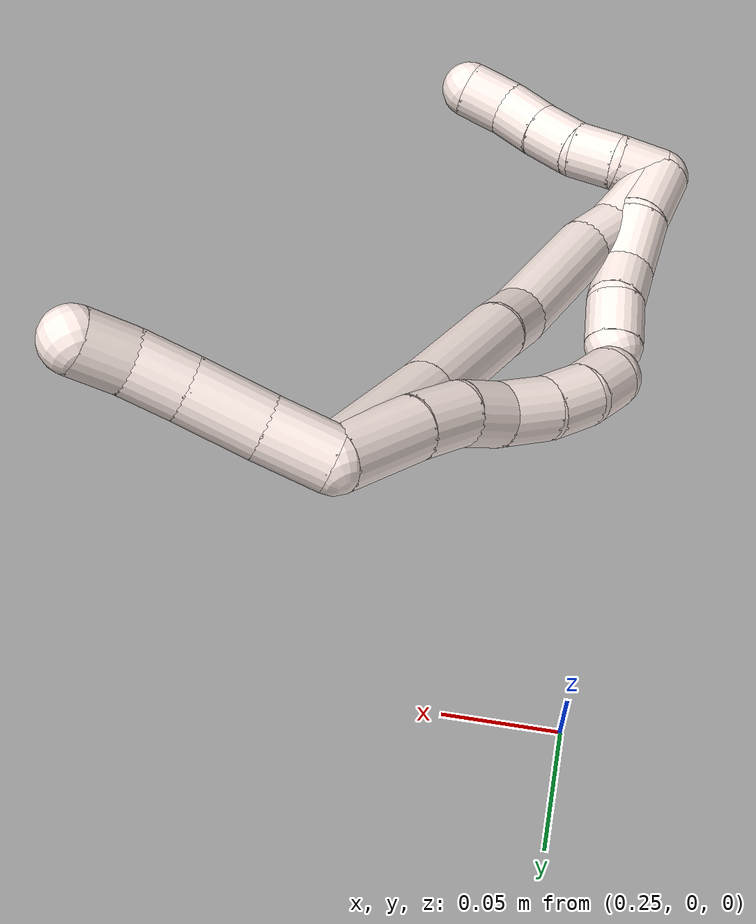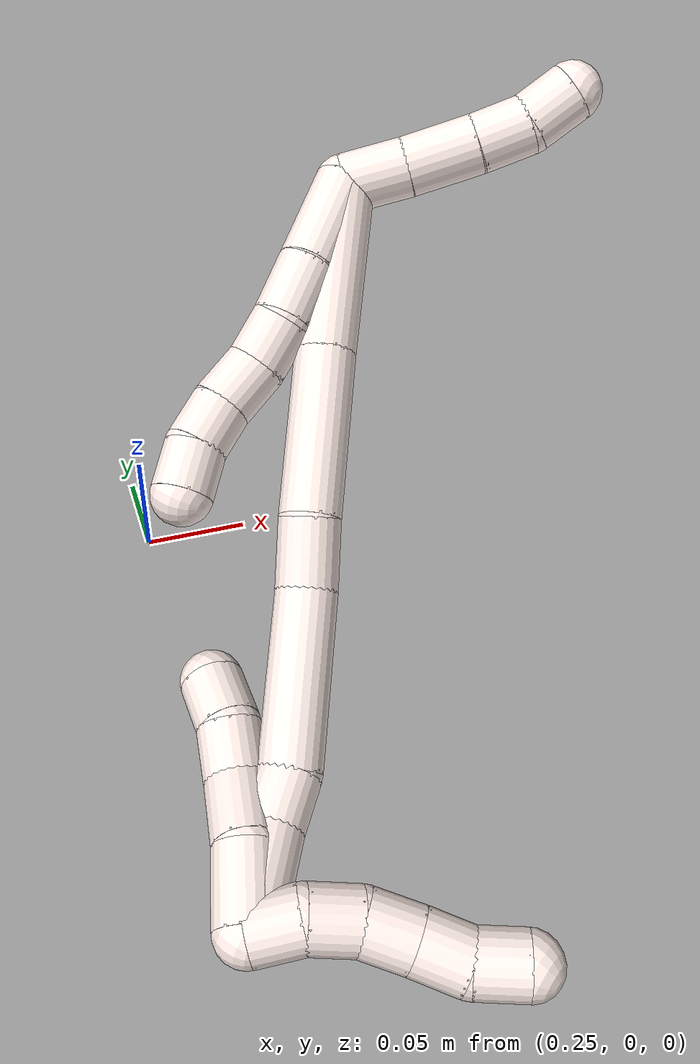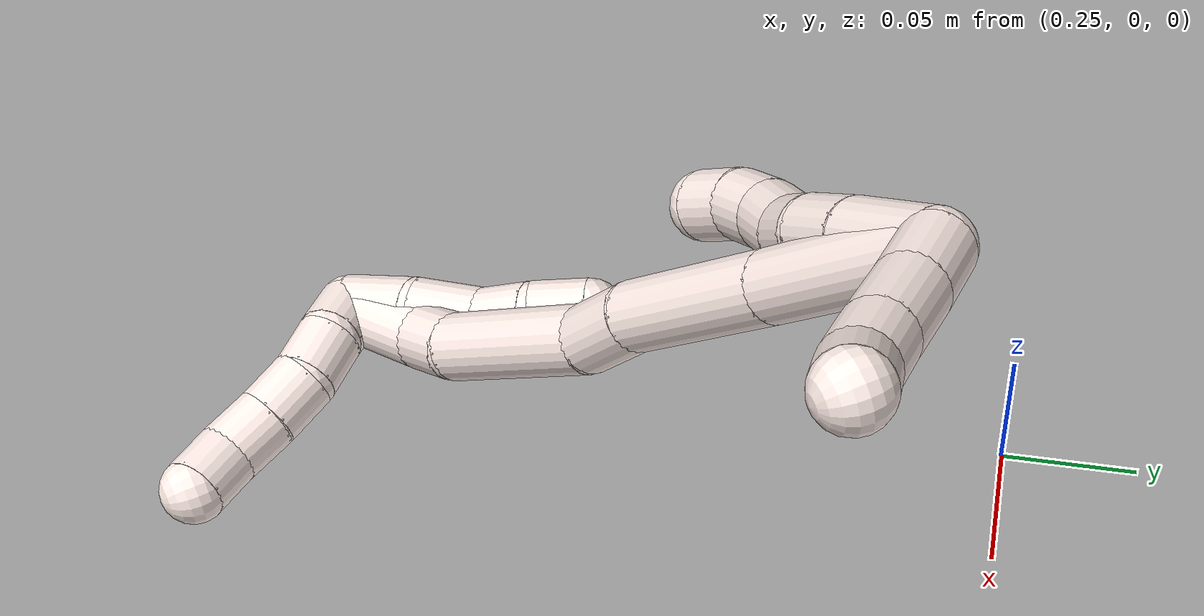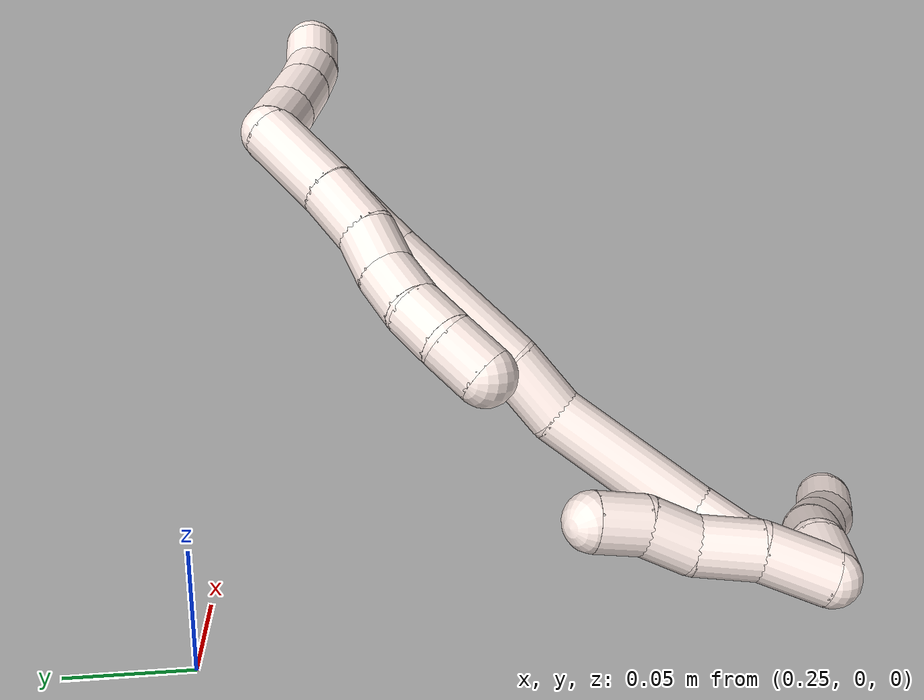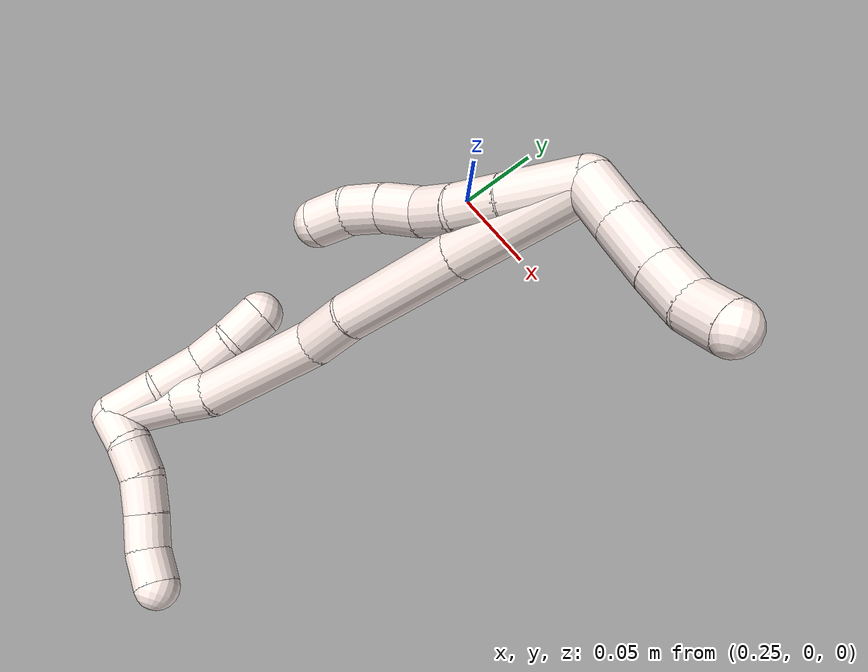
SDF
<sdf version="1.7">
 <world name="default">
  <model name="11">
   <static>0</static>
   <link name="11">
    <collision name="collision-cylinder-e_1_2_8">
     <pose>0.019733 -0.001086 0.0042 0.252936 1.35441 0.203757</pose>
     <geometry><cylinder><radius>0.0125</radius><length>0.040409</length></cylinder></geometry>
     <surface>
      <friction><ode><mu>1.16</mu><mu2>1.16</mu2><slip1>0</slip1><slip2>0</slip2></ode></friction>
      <contact><ode><kp>1e+06</kp><kd>1</kd><max_vel>0</max_vel><min_depth>0.001</min_depth></ode></contact>
     </surface>
    </collision>
    <visual name="visual-cylinder-e_1_2_8">
     <pose>0.019733 -0.001086 0.0042 0.252936 1.35441 0.203757</pose>
     <geometry><cylinder><radius>0.0125</radius><length>0.040409</length></cylinder></geometry>
     <material><ambient>1 0.933333 0.909804 1</ambient></material>
    </visual>
    <collision name="collision-cylinder-e_2_8_9">
     <pose>0.052352 -0.00209 0.010574 -0.037045 1.4035 -0.031314</pose>
     <geometry><cylinder><radius>0.0125</radius><length>0.026136</length></cylinder></geometry>
     <surface>
      <friction><ode><mu>1.16</mu><mu2>1.16</mu2><slip1>0</slip1><slip2>0</slip2></ode></friction>
      <contact><ode><kp>1e+06</kp><kd>1</kd><max_vel>0</max_vel><min_depth>0.001</min_depth></ode></contact>
     </surface>
    </collision>
    <visual name="visual-cylinder-e_2_8_9">
     <pose>0.052352 -0.00209 0.010574 -0.037045 1.4035 -0.031314</pose>
     <geometry><cylinder><radius>0.0125</radius><length>0.026136</length></cylinder></geometry>
     <material><ambient>1 0.933333 0.909804 1</ambient></material>
    </visual>
    <collision name="collision-cylinder-e_3_9_10">
     <pose>0.075672 -0.000653 0.01251 -1.74522 1.43952 -1.61444</pose>
     <geometry><cylinder><radius>0.0125</radius><length>0.021051</length></cylinder></geometry>
     <surface>
      <friction><ode><mu>1.16</mu><mu2>1.16</mu2><slip1>0</slip1><slip2>0</slip2></ode></friction>
      <contact><ode><kp>1e+06</kp><kd>1</kd><max_vel>0</max_vel><min_depth>0.001</min_depth></ode></contact>
     </surface>
    </collision>
    <visual name="visual-cylinder-e_3_9_10">
     <pose>0.075672 -0.000653 0.01251 -1.74522 1.43952 -1.61444</pose>
     <geometry><cylinder><radius>0.0125</radius><length>0.021051</length></cylinder></geometry>
     <material><ambient>1 0.933333 0.909804 1</ambient></material>
    </visual>
    <collision name="collision-cylinder-e_4_10_11">
     <pose>0.097127 -0.000778 0.011621 1.98382 1.42499 1.84621</pose>
     <geometry><cylinder><radius>0.0125</radius><length>0.022277</length></cylinder></geometry>
     <surface>
      <friction><ode><mu>1.16</mu><mu2>1.16</mu2><slip1>0</slip1><slip2>0</slip2></ode></friction>
      <contact><ode><kp>1e+06</kp><kd>1</kd><max_vel>0</max_vel><min_depth>0.001</min_depth></ode></contact>
     </surface>
    </collision>
    <visual name="visual-cylinder-e_4_10_11">
     <pose>0.097127 -0.000778 0.011621 1.98382 1.42499 1.84621</pose>
     <geometry><cylinder><radius>0.0125</radius><length>0.022277</length></cylinder></geometry>
     <material><ambient>1 0.933333 0.909804 1</ambient></material>
    </visual>
    <collision name="collision-cylinder-e_5_11_12">
     <pose>0.117993 -0.00372 0.012228 0.85987 1.37756 0.721946</pose>
     <geometry><cylinder><radius>0.0125</radius><length>0.020063</length></cylinder></geometry>
     <surface>
      <friction><ode><mu>1.16</mu><mu2>1.16</mu2><slip1>0</slip1><slip2>0</slip2></ode></friction>
      <contact><ode><kp>1e+06</kp><kd>1</kd><max_vel>0</max_vel><min_depth>0.001</min_depth></ode></contact>
     </surface>
    </collision>
    <visual name="visual-cylinder-e_5_11_12">
     <pose>0.117993 -0.00372 0.012228 0.85987 1.37756 0.721946</pose>
     <geometry><cylinder><radius>0.0125</radius><length>0.020063</length></cylinder></geometry>
     <material><ambient>1 0.933333 0.909804 1</ambient></material>
    </visual>
    <collision name="collision-cylinder-e_6_12_6">
     <pose>0.137294 -0.005128 0.016834 -0.015666 1.23044 -0.011071</pose>
     <geometry><cylinder><radius>0.0125</radius><length>0.020064</length></cylinder></geometry>
     <surface>
      <friction><ode><mu>1.16</mu><mu2>1.16</mu2><slip1>0</slip1><slip2>0</slip2></ode></friction>
      <contact><ode><kp>1e+06</kp><kd>1</kd><max_vel>0</max_vel><min_depth>0.001</min_depth></ode></contact>
     </surface>
    </collision>
    <visual name="visual-cylinder-e_6_12_6">
     <pose>0.137294 -0.005128 0.016834 -0.015666 1.23044 -0.011071</pose>
     <geometry><cylinder><radius>0.0125</radius><length>0.020064</length></cylinder></geometry>
     <material><ambient>1 0.933333 0.909804 1</ambient></material>
    </visual>
    <collision name="collision-cylinder-e_1_2_13">
     <pose>-0.009427 0.002 0.009279 -0.212282 -0.78201 0.087783</pose>
     <geometry><cylinder><radius>0.0125</radius><length>0.026756</length></cylinder></geometry>
     <surface>
      <friction><ode><mu>1.16</mu><mu2>1.16</mu2><slip1>0</slip1><slip2>0</slip2></ode></friction>
      <contact><ode><kp>1e+06</kp><kd>1</kd><max_vel>0</max_vel><min_depth>0.001</min_depth></ode></contact>
     </surface>
    </collision>
    <visual name="visual-cylinder-e_1_2_13">
     <pose>-0.009427 0.002 0.009279 -0.212282 -0.78201 0.087783</pose>
     <geometry><cylinder><radius>0.0125</radius><length>0.026756</length></cylinder></geometry>
     <material><ambient>1 0.933333 0.909804 1</ambient></material>
    </visual>
    <collision name="collision-cylinder-e_2_13_14">
     <pose>-0.029725 0.005432 0.02886 -0.138168 -0.807402 0.059097</pose>
     <geometry><cylinder><radius>0.0125</radius><length>0.03009</length></cylinder></geometry>
     <surface>
      <friction><ode><mu>1.16</mu><mu2>1.16</mu2><slip1>0</slip1><slip2>0</slip2></ode></friction>
      <contact><ode><kp>1e+06</kp><kd>1</kd><max_vel>0</max_vel><min_depth>0.001</min_depth></ode></contact>
     </surface>
    </collision>
    <visual name="visual-cylinder-e_2_13_14">
     <pose>-0.029725 0.005432 0.02886 -0.138168 -0.807402 0.059097</pose>
     <geometry><cylinder><radius>0.0125</radius><length>0.03009</length></cylinder></geometry>
     <material><ambient>1 0.933333 0.909804 1</ambient></material>
    </visual>
    <collision name="collision-cylinder-e_3_14_15">
     <pose>-0.04897 0.007691 0.046299 -0.11522 -0.861774 0.053012</pose>
     <geometry><cylinder><radius>0.0125</radius><length>0.02207</length></cylinder></geometry>
     <surface>
      <friction><ode><mu>1.16</mu><mu2>1.16</mu2><slip1>0</slip1><slip2>0</slip2></ode></friction>
      <contact><ode><kp>1e+06</kp><kd>1</kd><max_vel>0</max_vel><min_depth>0.001</min_depth></ode></contact>
     </surface>
    </collision>
    <visual name="visual-cylinder-e_3_14_15">
     <pose>-0.04897 0.007691 0.046299 -0.11522 -0.861774 0.053012</pose>
     <geometry><cylinder><radius>0.0125</radius><length>0.02207</length></cylinder></geometry>
     <material><ambient>1 0.933333 0.909804 1</ambient></material>
    </visual>
    <collision name="collision-cylinder-e_4_15_5">
     <pose>-0.066768 0.007922 0.058128 0.126192 -1.1056 -0.07792</pose>
     <geometry><cylinder><radius>0.0125</radius><length>0.021084</length></cylinder></geometry>
     <surface>
      <friction><ode><mu>1.16</mu><mu2>1.16</mu2><slip1>0</slip1><slip2>0</slip2></ode></friction>
      <contact><ode><kp>1e+06</kp><kd>1</kd><max_vel>0</max_vel><min_depth>0.001</min_depth></ode></contact>
     </surface>
    </collision>
    <visual name="visual-cylinder-e_4_15_5">
     <pose>-0.066768 0.007922 0.058128 0.126192 -1.1056 -0.07792</pose>
     <geometry><cylinder><radius>0.0125</radius><length>0.021084</length></cylinder></geometry>
     <material><ambient>1 0.933333 0.909804 1</ambient></material>
    </visual>
    <collision name="collision-cylinder-e_1_2_16">
     <pose>0.033305 0.004973 0.015371 -0.312882 1.11916 -0.196954</pose>
     <geometry><cylinder><radius>0.0125</radius><length>0.074032</length></cylinder></geometry>
     <surface>
      <friction><ode><mu>1.16</mu><mu2>1.16</mu2><slip1>0</slip1><slip2>0</slip2></ode></friction>
      <contact><ode><kp>1e+06</kp><kd>1</kd><max_vel>0</max_vel><min_depth>0.001</min_depth></ode></contact>
     </surface>
    </collision>
    <visual name="visual-cylinder-e_1_2_16">
     <pose>0.033305 0.004973 0.015371 -0.312882 1.11916 -0.196954</pose>
     <geometry><cylinder><radius>0.0125</radius><length>0.074032</length></cylinder></geometry>
     <material><ambient>1 0.933333 0.909804 1</ambient></material>
    </visual>
    <collision name="collision-cylinder-e_2_16_17">
     <pose>0.096957 0.013918 0.045862 -0.256944 1.09511 -0.157214</pose>
     <geometry><cylinder><radius>0.0125</radius><length>0.068276</length></cylinder></geometry>
     <surface>
      <friction><ode><mu>1.16</mu><mu2>1.16</mu2><slip1>0</slip1><slip2>0</slip2></ode></friction>
      <contact><ode><kp>1e+06</kp><kd>1</kd><max_vel>0</max_vel><min_depth>0.001</min_depth></ode></contact>
     </surface>
    </collision>
    <visual name="visual-cylinder-e_2_16_17">
     <pose>0.096957 0.013918 0.045862 -0.256944 1.09511 -0.157214</pose>
     <geometry><cylinder><radius>0.0125</radius><length>0.068276</length></cylinder></geometry>
     <material><ambient>1 0.933333 0.909804 1</ambient></material>
    </visual>
    <collision name="collision-cylinder-e_3_17_18">
     <pose>0.139755 0.021705 0.067032 -0.562494 1.04933 -0.331355</pose>
     <geometry><cylinder><radius>0.0125</radius><length>0.028715</length></cylinder></geometry>
     <surface>
      <friction><ode><mu>1.16</mu><mu2>1.16</mu2><slip1>0</slip1><slip2>0</slip2></ode></friction>
      <contact><ode><kp>1e+06</kp><kd>1</kd><max_vel>0</max_vel><min_depth>0.001</min_depth></ode></contact>
     </surface>
    </collision>
    <visual name="visual-cylinder-e_3_17_18">
     <pose>0.139755 0.021705 0.067032 -0.562494 1.04933 -0.331355</pose>
     <geometry><cylinder><radius>0.0125</radius><length>0.028715</length></cylinder></geometry>
     <material><ambient>1 0.933333 0.909804 1</ambient></material>
    </visual>
    <collision name="collision-cylinder-e_4_18_19">
     <pose>0.182596 0.025478 0.090034 0.002465 1.06203 0.001448</pose>
     <geometry><cylinder><radius>0.0125</radius><length>0.0696</length></cylinder></geometry>
     <surface>
      <friction><ode><mu>1.16</mu><mu2>1.16</mu2><slip1>0</slip1><slip2>0</slip2></ode></friction>
      <contact><ode><kp>1e+06</kp><kd>1</kd><max_vel>0</max_vel><min_depth>0.001</min_depth></ode></contact>
     </surface>
    </collision>
    <visual name="visual-cylinder-e_4_18_19">
     <pose>0.182596 0.025478 0.090034 0.002465 1.06203 0.001448</pose>
     <geometry><cylinder><radius>0.0125</radius><length>0.0696</length></cylinder></geometry>
     <material><ambient>1 0.933333 0.909804 1</ambient></material>
    </visual>
    <collision name="collision-cylinder-e_5_19_20">
     <pose>0.222841 0.023596 0.110375 0.497194 1.19762 0.343042</pose>
     <geometry><cylinder><radius>0.0125</radius><length>0.021162</length></cylinder></geometry>
     <surface>
      <friction><ode><mu>1.16</mu><mu2>1.16</mu2><slip1>0</slip1><slip2>0</slip2></ode></friction>
      <contact><ode><kp>1e+06</kp><kd>1</kd><max_vel>0</max_vel><min_depth>0.001</min_depth></ode></contact>
     </surface>
    </collision>
    <visual name="visual-cylinder-e_5_19_20">
     <pose>0.222841 0.023596 0.110375 0.497194 1.19762 0.343042</pose>
     <geometry><cylinder><radius>0.0125</radius><length>0.021162</length></cylinder></geometry>
     <material><ambient>1 0.933333 0.909804 1</ambient></material>
    </visual>
    <collision name="collision-cylinder-e_6_20_1">
     <pose>0.248259 0.014979 0.122534 0.65801 0.952077 0.348486</pose>
     <geometry><cylinder><radius>0.0125</radius><length>0.038215</length></cylinder></geometry>
     <surface>
      <friction><ode><mu>1.16</mu><mu2>1.16</mu2><slip1>0</slip1><slip2>0</slip2></ode></friction>
      <contact><ode><kp>1e+06</kp><kd>1</kd><max_vel>0</max_vel><min_depth>0.001</min_depth></ode></contact>
     </surface>
    </collision>
    <visual name="visual-cylinder-e_6_20_1">
     <pose>0.248259 0.014979 0.122534 0.65801 0.952077 0.348486</pose>
     <geometry><cylinder><radius>0.0125</radius><length>0.038215</length></cylinder></geometry>
     <material><ambient>1 0.933333 0.909804 1</ambient></material>
    </visual>
    <collision name="collision-cylinder-e_1_1_21">
     <pose>0.25278 0.010802 0.121625 -2.87904 -0.833973 2.56222</pose>
     <geometry><cylinder><radius>0.0125</radius><length>0.029827</length></cylinder></geometry>
     <surface>
      <friction><ode><mu>1.16</mu><mu2>1.16</mu2><slip1>0</slip1><slip2>0</slip2></ode></friction>
      <contact><ode><kp>1e+06</kp><kd>1</kd><max_vel>0</max_vel><min_depth>0.001</min_depth></ode></contact>
     </surface>
    </collision>
    <visual name="visual-cylinder-e_1_1_21">
     <pose>0.25278 0.010802 0.121625 -2.87904 -0.833973 2.56222</pose>
     <geometry><cylinder><radius>0.0125</radius><length>0.029827</length></cylinder></geometry>
     <material><ambient>1 0.933333 0.909804 1</ambient></material>
    </visual>
    <collision name="collision-cylinder-e_2_21_22">
     <pose>0.234107 0.018238 0.101864 -2.69446 -0.598609 1.87155</pose>
     <geometry><cylinder><radius>0.0125</radius><length>0.027072</length></cylinder></geometry>
     <surface>
      <friction><ode><mu>1.16</mu><mu2>1.16</mu2><slip1>0</slip1><slip2>0</slip2></ode></friction>
      <contact><ode><kp>1e+06</kp><kd>1</kd><max_vel>0</max_vel><min_depth>0.001</min_depth></ode></contact>
     </surface>
    </collision>
    <visual name="visual-cylinder-e_2_21_22">
     <pose>0.234107 0.018238 0.101864 -2.69446 -0.598609 1.87155</pose>
     <geometry><cylinder><radius>0.0125</radius><length>0.027072</length></cylinder></geometry>
     <material><ambient>1 0.933333 0.909804 1</ambient></material>
    </visual>
    <collision name="collision-cylinder-e_3_22_23">
     <pose>0.218946 0.02358 0.08396 -3.07687 -0.76562 2.98115</pose>
     <geometry><cylinder><radius>0.0125</radius><length>0.021741</length></cylinder></geometry>
     <surface>
      <friction><ode><mu>1.16</mu><mu2>1.16</mu2><slip1>0</slip1><slip2>0</slip2></ode></friction>
      <contact><ode><kp>1e+06</kp><kd>1</kd><max_vel>0</max_vel><min_depth>0.001</min_depth></ode></contact>
     </surface>
    </collision>
    <visual name="visual-cylinder-e_3_22_23">
     <pose>0.218946 0.02358 0.08396 -3.07687 -0.76562 2.98115</pose>
     <geometry><cylinder><radius>0.0125</radius><length>0.021741</length></cylinder></geometry>
     <material><ambient>1 0.933333 0.909804 1</ambient></material>
    </visual>
    <collision name="collision-cylinder-e_4_23_4">
     <pose>0.206451 0.02629 0.066943 -2.90654 -0.483282 2.24806</pose>
     <geometry><cylinder><radius>0.0125</radius><length>0.02136</length></cylinder></geometry>
     <surface>
      <friction><ode><mu>1.16</mu><mu2>1.16</mu2><slip1>0</slip1><slip2>0</slip2></ode></friction>
      <contact><ode><kp>1e+06</kp><kd>1</kd><max_vel>0</max_vel><min_depth>0.001</min_depth></ode></contact>
     </surface>
    </collision>
    <visual name="visual-cylinder-e_4_23_4">
     <pose>0.206451 0.02629 0.066943 -2.90654 -0.483282 2.24806</pose>
     <geometry><cylinder><radius>0.0125</radius><length>0.02136</length></cylinder></geometry>
     <material><ambient>1 0.933333 0.909804 1</ambient></material>
    </visual>
    <collision name="collision-cylinder-e_1_1_24">
     <pose>0.256756 0.010809 0.137878 -0.377489 -0.785077 0.157844</pose>
     <geometry><cylinder><radius>0.0125</radius><length>0.02</length></cylinder></geometry>
     <surface>
      <friction><ode><mu>1.16</mu><mu2>1.16</mu2><slip1>0</slip1><slip2>0</slip2></ode></friction>
      <contact><ode><kp>1e+06</kp><kd>1</kd><max_vel>0</max_vel><min_depth>0.001</min_depth></ode></contact>
     </surface>
    </collision>
    <visual name="visual-cylinder-e_1_1_24">
     <pose>0.256756 0.010809 0.137878 -0.377489 -0.785077 0.157844</pose>
     <geometry><cylinder><radius>0.0125</radius><length>0.02</length></cylinder></geometry>
     <material><ambient>1 0.933333 0.909804 1</ambient></material>
    </visual>
    <collision name="collision-cylinder-e_2_24_25">
     <pose>0.245011 0.01798 0.152023 -0.54256 -0.486551 0.137843</pose>
     <geometry><cylinder><radius>0.0125</radius><length>0.02</length></cylinder></geometry>
     <surface>
      <friction><ode><mu>1.16</mu><mu2>1.16</mu2><slip1>0</slip1><slip2>0</slip2></ode></friction>
      <contact><ode><kp>1e+06</kp><kd>1</kd><max_vel>0</max_vel><min_depth>0.001</min_depth></ode></contact>
     </surface>
    </collision>
    <visual name="visual-cylinder-e_2_24_25">
     <pose>0.245011 0.01798 0.152023 -0.54256 -0.486551 0.137843</pose>
     <geometry><cylinder><radius>0.0125</radius><length>0.02</length></cylinder></geometry>
     <material><ambient>1 0.933333 0.909804 1</ambient></material>
    </visual>
    <collision name="collision-cylinder-e_3_25_26">
     <pose>0.238086 0.026424 0.168531 -0.409572 -0.226903 0.047322</pose>
     <geometry><cylinder><radius>0.0125</radius><length>0.02</length></cylinder></geometry>
     <surface>
      <friction><ode><mu>1.16</mu><mu2>1.16</mu2><slip1>0</slip1><slip2>0</slip2></ode></friction>
      <contact><ode><kp>1e+06</kp><kd>1</kd><max_vel>0</max_vel><min_depth>0.001</min_depth></ode></contact>
     </surface>
    </collision>
    <visual name="visual-cylinder-e_3_25_26">
     <pose>0.238086 0.026424 0.168531 -0.409572 -0.226903 0.047322</pose>
     <geometry><cylinder><radius>0.0125</radius><length>0.02</length></cylinder></geometry>
     <material><ambient>1 0.933333 0.909804 1</ambient></material>
    </visual>
    <collision name="collision-cylinder-e_4_26_27">
     <pose>0.233892 0.033645 0.186691 -0.347566 -0.195724 0.034467</pose>
     <geometry><cylinder><radius>0.0125</radius><length>0.02</length></cylinder></geometry>
     <surface>
      <friction><ode><mu>1.16</mu><mu2>1.16</mu2><slip1>0</slip1><slip2>0</slip2></ode></friction>
      <contact><ode><kp>1e+06</kp><kd>1</kd><max_vel>0</max_vel><min_depth>0.001</min_depth></ode></contact>
     </surface>
    </collision>
    <visual name="visual-cylinder-e_4_26_27">
     <pose>0.233892 0.033645 0.186691 -0.347566 -0.195724 0.034467</pose>
     <geometry><cylinder><radius>0.0125</radius><length>0.02</length></cylinder></geometry>
     <material><ambient>1 0.933333 0.909804 1</ambient></material>
    </visual>
    <collision name="collision-cylinder-e_5_27_3">
     <pose>0.226888 0.039701 0.204101 -0.32019 -0.53044 0.087664</pose>
     <geometry><cylinder><radius>0.0125</radius><length>0.02</length></cylinder></geometry>
     <surface>
      <friction><ode><mu>1.16</mu><mu2>1.16</mu2><slip1>0</slip1><slip2>0</slip2></ode></friction>
      <contact><ode><kp>1e+06</kp><kd>1</kd><max_vel>0</max_vel><min_depth>0.001</min_depth></ode></contact>
     </surface>
    </collision>
    <visual name="visual-cylinder-e_5_27_3">
     <pose>0.226888 0.039701 0.204101 -0.32019 -0.53044 0.087664</pose>
     <geometry><cylinder><radius>0.0125</radius><length>0.02</length></cylinder></geometry>
     <material><ambient>1 0.933333 0.909804 1</ambient></material>
    </visual>
    <collision name="collision-sphere-3">
     <pose>0.221829 0.042416 0.212289 0 -0 0</pose>
     <geometry><sphere><radius>0.0125</radius></sphere></geometry>
     <surface>
      <friction><ode><mu>1.16</mu><mu2>1.16</mu2><slip1>0</slip1><slip2>0</slip2></ode></friction>
      <contact><ode><kp>1e+06</kp><kd>1</kd><max_vel>0</max_vel><min_depth>0.001</min_depth></ode></contact>
     </surface>
    </collision>
    <visual name="visual-sphere-3">
     <pose>0.221829 0.042416 0.212289 0 -0 0</pose>
     <geometry><sphere><radius>0.0125</radius></sphere></geometry>
     <material><ambient>1 0.933333 0.909804 1</ambient></material>
    </visual>
    <collision name="collision-sphere-27">
     <pose>0.231947 0.036986 0.195914 0 -0 0</pose>
     <geometry><sphere><radius>0.0125</radius></sphere></geometry>
     <surface>
      <friction><ode><mu>1.16</mu><mu2>1.16</mu2><slip1>0</slip1><slip2>0</slip2></ode></friction>
      <contact><ode><kp>1e+06</kp><kd>1</kd><max_vel>0</max_vel><min_depth>0.001</min_depth></ode></contact>
     </surface>
    </collision>
    <visual name="visual-sphere-27">
     <pose>0.231947 0.036986 0.195914 0 -0 0</pose>
     <geometry><sphere><radius>0.0125</radius></sphere></geometry>
     <material><ambient>1 0.933333 0.909804 1</ambient></material>
    </visual>
    <collision name="collision-sphere-26">
     <pose>0.235836 0.030304 0.177469 0 -0 0</pose>
     <geometry><sphere><radius>0.0125</radius></sphere></geometry>
     <surface>
      <friction><ode><mu>1.16</mu><mu2>1.16</mu2><slip1>0</slip1><slip2>0</slip2></ode></friction>
      <contact><ode><kp>1e+06</kp><kd>1</kd><max_vel>0</max_vel><min_depth>0.001</min_depth></ode></contact>
     </surface>
    </collision>
    <visual name="visual-sphere-26">
     <pose>0.235836 0.030304 0.177469 0 -0 0</pose>
     <geometry><sphere><radius>0.0125</radius></sphere></geometry>
     <material><ambient>1 0.933333 0.909804 1</ambient></material>
    </visual>
    <collision name="collision-sphere-25">
     <pose>0.240336 0.022544 0.159593 0 -0 0</pose>
     <geometry><sphere><radius>0.0125</radius></sphere></geometry>
     <surface>
      <friction><ode><mu>1.16</mu><mu2>1.16</mu2><slip1>0</slip1><slip2>0</slip2></ode></friction>
      <contact><ode><kp>1e+06</kp><kd>1</kd><max_vel>0</max_vel><min_depth>0.001</min_depth></ode></contact>
     </surface>
    </collision>
    <visual name="visual-sphere-25">
     <pose>0.240336 0.022544 0.159593 0 -0 0</pose>
     <geometry><sphere><radius>0.0125</radius></sphere></geometry>
     <material><ambient>1 0.933333 0.909804 1</ambient></material>
    </visual>
    <collision name="collision-sphere-24">
     <pose>0.249687 0.013416 0.144453 0 -0 0</pose>
     <geometry><sphere><radius>0.0125</radius></sphere></geometry>
     <surface>
      <friction><ode><mu>1.16</mu><mu2>1.16</mu2><slip1>0</slip1><slip2>0</slip2></ode></friction>
      <contact><ode><kp>1e+06</kp><kd>1</kd><max_vel>0</max_vel><min_depth>0.001</min_depth></ode></contact>
     </surface>
    </collision>
    <visual name="visual-sphere-24">
     <pose>0.249687 0.013416 0.144453 0 -0 0</pose>
     <geometry><sphere><radius>0.0125</radius></sphere></geometry>
     <material><ambient>1 0.933333 0.909804 1</ambient></material>
    </visual>
    <collision name="collision-sphere-4">
     <pose>0.201488 0.028492 0.057746 0 -0 0</pose>
     <geometry><sphere><radius>0.0125</radius></sphere></geometry>
     <surface>
      <friction><ode><mu>1.16</mu><mu2>1.16</mu2><slip1>0</slip1><slip2>0</slip2></ode></friction>
      <contact><ode><kp>1e+06</kp><kd>1</kd><max_vel>0</max_vel><min_depth>0.001</min_depth></ode></contact>
     </surface>
    </collision>
    <visual name="visual-sphere-4">
     <pose>0.201488 0.028492 0.057746 0 -0 0</pose>
     <geometry><sphere><radius>0.0125</radius></sphere></geometry>
     <material><ambient>1 0.933333 0.909804 1</ambient></material>
    </visual>
    <collision name="collision-sphere-23">
     <pose>0.211413 0.024087 0.07614 0 -0 0</pose>
     <geometry><sphere><radius>0.0125</radius></sphere></geometry>
     <surface>
      <friction><ode><mu>1.16</mu><mu2>1.16</mu2><slip1>0</slip1><slip2>0</slip2></ode></friction>
      <contact><ode><kp>1e+06</kp><kd>1</kd><max_vel>0</max_vel><min_depth>0.001</min_depth></ode></contact>
     </surface>
    </collision>
    <visual name="visual-sphere-23">
     <pose>0.211413 0.024087 0.07614 0 -0 0</pose>
     <geometry><sphere><radius>0.0125</radius></sphere></geometry>
     <material><ambient>1 0.933333 0.909804 1</ambient></material>
    </visual>
    <collision name="collision-sphere-22">
     <pose>0.226479 0.023074 0.091781 0 -0 0</pose>
     <geometry><sphere><radius>0.0125</radius></sphere></geometry>
     <surface>
      <friction><ode><mu>1.16</mu><mu2>1.16</mu2><slip1>0</slip1><slip2>0</slip2></ode></friction>
      <contact><ode><kp>1e+06</kp><kd>1</kd><max_vel>0</max_vel><min_depth>0.001</min_depth></ode></contact>
     </surface>
    </collision>
    <visual name="visual-sphere-22">
     <pose>0.226479 0.023074 0.091781 0 -0 0</pose>
     <geometry><sphere><radius>0.0125</radius></sphere></geometry>
     <material><ambient>1 0.933333 0.909804 1</ambient></material>
    </visual>
    <collision name="collision-sphere-21">
     <pose>0.241734 0.013403 0.111947 0 -0 0</pose>
     <geometry><sphere><radius>0.0125</radius></sphere></geometry>
     <surface>
      <friction><ode><mu>1.16</mu><mu2>1.16</mu2><slip1>0</slip1><slip2>0</slip2></ode></friction>
      <contact><ode><kp>1e+06</kp><kd>1</kd><max_vel>0</max_vel><min_depth>0.001</min_depth></ode></contact>
     </surface>
    </collision>
    <visual name="visual-sphere-21">
     <pose>0.241734 0.013403 0.111947 0 -0 0</pose>
     <geometry><sphere><radius>0.0125</radius></sphere></geometry>
     <material><ambient>1 0.933333 0.909804 1</ambient></material>
    </visual>
    <collision name="collision-sphere-1">
     <pose>0.263825 0.008202 0.131302 0 -0 0</pose>
     <geometry><sphere><radius>0.0125</radius></sphere></geometry>
     <surface>
      <friction><ode><mu>1.16</mu><mu2>1.16</mu2><slip1>0</slip1><slip2>0</slip2></ode></friction>
      <contact><ode><kp>1e+06</kp><kd>1</kd><max_vel>0</max_vel><min_depth>0.001</min_depth></ode></contact>
     </surface>
    </collision>
    <visual name="visual-sphere-1">
     <pose>0.263825 0.008202 0.131302 0 -0 0</pose>
     <geometry><sphere><radius>0.0125</radius></sphere></geometry>
     <material><ambient>1 0.933333 0.909804 1</ambient></material>
    </visual>
    <collision name="collision-sphere-12">
     <pose>0.127838 -0.00518 0.013486 0 -0 0</pose>
     <geometry><sphere><radius>0.0125</radius></sphere></geometry>
     <surface>
      <friction><ode><mu>1.16</mu><mu2>1.16</mu2><slip1>0</slip1><slip2>0</slip2></ode></friction>
      <contact><ode><kp>1e+06</kp><kd>1</kd><max_vel>0</max_vel><min_depth>0.001</min_depth></ode></contact>
     </surface>
    </collision>
    <visual name="visual-sphere-12">
     <pose>0.127838 -0.00518 0.013486 0 -0 0</pose>
     <geometry><sphere><radius>0.0125</radius></sphere></geometry>
     <material><ambient>1 0.933333 0.909804 1</ambient></material>
    </visual>
    <collision name="collision-sphere-11">
     <pose>0.108148 -0.002261 0.010971 0 -0 0</pose>
     <geometry><sphere><radius>0.0125</radius></sphere></geometry>
     <surface>
      <friction><ode><mu>1.16</mu><mu2>1.16</mu2><slip1>0</slip1><slip2>0</slip2></ode></friction>
      <contact><ode><kp>1e+06</kp><kd>1</kd><max_vel>0</max_vel><min_depth>0.001</min_depth></ode></contact>
     </surface>
    </collision>
    <visual name="visual-sphere-11">
     <pose>0.108148 -0.002261 0.010971 0 -0 0</pose>
     <geometry><sphere><radius>0.0125</radius></sphere></geometry>
     <material><ambient>1 0.933333 0.909804 1</ambient></material>
    </visual>
    <collision name="collision-sphere-10">
     <pose>0.086107 0.000704 0.012271 0 -0 0</pose>
     <geometry><sphere><radius>0.0125</radius></sphere></geometry>
     <surface>
      <friction><ode><mu>1.16</mu><mu2>1.16</mu2><slip1>0</slip1><slip2>0</slip2></ode></friction>
      <contact><ode><kp>1e+06</kp><kd>1</kd><max_vel>0</max_vel><min_depth>0.001</min_depth></ode></contact>
     </surface>
    </collision>
    <visual name="visual-sphere-10">
     <pose>0.086107 0.000704 0.012271 0 -0 0</pose>
     <geometry><sphere><radius>0.0125</radius></sphere></geometry>
     <material><ambient>1 0.933333 0.909804 1</ambient></material>
    </visual>
    <collision name="collision-sphere-9">
     <pose>0.065238 -0.00201 0.012749 0 -0 0</pose>
     <geometry><sphere><radius>0.0125</radius></sphere></geometry>
     <surface>
      <friction><ode><mu>1.16</mu><mu2>1.16</mu2><slip1>0</slip1><slip2>0</slip2></ode></friction>
      <contact><ode><kp>1e+06</kp><kd>1</kd><max_vel>0</max_vel><min_depth>0.001</min_depth></ode></contact>
     </surface>
    </collision>
    <visual name="visual-sphere-9">
     <pose>0.065238 -0.00201 0.012749 0 -0 0</pose>
     <geometry><sphere><radius>0.0125</radius></sphere></geometry>
     <material><ambient>1 0.933333 0.909804 1</ambient></material>
    </visual>
    <collision name="collision-sphere-2">
     <geometry><sphere><radius>0.0125</radius></sphere></geometry>
     <surface>
      <friction><ode><mu>1.16</mu><mu2>1.16</mu2><slip1>0</slip1><slip2>0</slip2></ode></friction>
      <contact><ode><kp>1e+06</kp><kd>1</kd><max_vel>0</max_vel><min_depth>0.001</min_depth></ode></contact>
     </surface>
    </collision>
    <visual name="visual-sphere-2">
     <geometry><sphere><radius>0.0125</radius></sphere></geometry>
     <material><ambient>1 0.933333 0.909804 1</ambient></material>
    </visual>
    <collision name="collision-sphere-19">
     <pose>0.212989 0.025436 0.106985 0 -0 0</pose>
     <geometry><sphere><radius>0.0125</radius></sphere></geometry>
     <surface>
      <friction><ode><mu>1.16</mu><mu2>1.16</mu2><slip1>0</slip1><slip2>0</slip2></ode></friction>
      <contact><ode><kp>1e+06</kp><kd>1</kd><max_vel>0</max_vel><min_depth>0.001</min_depth></ode></contact>
     </surface>
    </collision>
    <visual name="visual-sphere-19">
     <pose>0.212989 0.025436 0.106985 0 -0 0</pose>
     <geometry><sphere><radius>0.0125</radius></sphere></geometry>
     <material><ambient>1 0.933333 0.909804 1</ambient></material>
    </visual>
    <collision name="collision-sphere-8">
     <pose>0.039466 -0.002171 0.0084 0 -0 0</pose>
     <geometry><sphere><radius>0.0125</radius></sphere></geometry>
     <surface>
      <friction><ode><mu>1.16</mu><mu2>1.16</mu2><slip1>0</slip1><slip2>0</slip2></ode></friction>
      <contact><ode><kp>1e+06</kp><kd>1</kd><max_vel>0</max_vel><min_depth>0.001</min_depth></ode></contact>
     </surface>
    </collision>
    <visual name="visual-sphere-8">
     <pose>0.039466 -0.002171 0.0084 0 -0 0</pose>
     <geometry><sphere><radius>0.0125</radius></sphere></geometry>
     <material><ambient>1 0.933333 0.909804 1</ambient></material>
    </visual>
    <collision name="collision-sphere-6">
     <pose>0.146751 -0.005075 0.020183 0 -0 0</pose>
     <geometry><sphere><radius>0.0125</radius></sphere></geometry>
     <surface>
      <friction><ode><mu>1.16</mu><mu2>1.16</mu2><slip1>0</slip1><slip2>0</slip2></ode></friction>
      <contact><ode><kp>1e+06</kp><kd>1</kd><max_vel>0</max_vel><min_depth>0.001</min_depth></ode></contact>
     </surface>
    </collision>
    <visual name="visual-sphere-6">
     <pose>0.146751 -0.005075 0.020183 0 -0 0</pose>
     <geometry><sphere><radius>0.0125</radius></sphere></geometry>
     <material><ambient>1 0.933333 0.909804 1</ambient></material>
    </visual>
    <collision name="collision-sphere-13">
     <pose>-0.018855 0.004 0.018557 0 -0 0</pose>
     <geometry><sphere><radius>0.0125</radius></sphere></geometry>
     <surface>
      <friction><ode><mu>1.16</mu><mu2>1.16</mu2><slip1>0</slip1><slip2>0</slip2></ode></friction>
      <contact><ode><kp>1e+06</kp><kd>1</kd><max_vel>0</max_vel><min_depth>0.001</min_depth></ode></contact>
     </surface>
    </collision>
    <visual name="visual-sphere-13">
     <pose>-0.018855 0.004 0.018557 0 -0 0</pose>
     <geometry><sphere><radius>0.0125</radius></sphere></geometry>
     <material><ambient>1 0.933333 0.909804 1</ambient></material>
    </visual>
    <collision name="collision-sphere-14">
     <pose>-0.040595 0.006865 0.039162 0 -0 0</pose>
     <geometry><sphere><radius>0.0125</radius></sphere></geometry>
     <surface>
      <friction><ode><mu>1.16</mu><mu2>1.16</mu2><slip1>0</slip1><slip2>0</slip2></ode></friction>
      <contact><ode><kp>1e+06</kp><kd>1</kd><max_vel>0</max_vel><min_depth>0.001</min_depth></ode></contact>
     </surface>
    </collision>
    <visual name="visual-sphere-14">
     <pose>-0.040595 0.006865 0.039162 0 -0 0</pose>
     <geometry><sphere><radius>0.0125</radius></sphere></geometry>
     <material><ambient>1 0.933333 0.909804 1</ambient></material>
    </visual>
    <collision name="collision-sphere-15">
     <pose>-0.057346 0.008517 0.053437 0 -0 0</pose>
     <geometry><sphere><radius>0.0125</radius></sphere></geometry>
     <surface>
      <friction><ode><mu>1.16</mu><mu2>1.16</mu2><slip1>0</slip1><slip2>0</slip2></ode></friction>
      <contact><ode><kp>1e+06</kp><kd>1</kd><max_vel>0</max_vel><min_depth>0.001</min_depth></ode></contact>
     </surface>
    </collision>
    <visual name="visual-sphere-15">
     <pose>-0.057346 0.008517 0.053437 0 -0 0</pose>
     <geometry><sphere><radius>0.0125</radius></sphere></geometry>
     <material><ambient>1 0.933333 0.909804 1</ambient></material>
    </visual>
    <collision name="collision-sphere-5">
     <pose>-0.07619 0.007326 0.06282 0 -0 0</pose>
     <geometry><sphere><radius>0.0125</radius></sphere></geometry>
     <surface>
      <friction><ode><mu>1.16</mu><mu2>1.16</mu2><slip1>0</slip1><slip2>0</slip2></ode></friction>
      <contact><ode><kp>1e+06</kp><kd>1</kd><max_vel>0</max_vel><min_depth>0.001</min_depth></ode></contact>
     </surface>
    </collision>
    <visual name="visual-sphere-5">
     <pose>-0.07619 0.007326 0.06282 0 -0 0</pose>
     <geometry><sphere><radius>0.0125</radius></sphere></geometry>
     <material><ambient>1 0.933333 0.909804 1</ambient></material>
    </visual>
    <collision name="collision-sphere-16">
     <pose>0.066609 0.009945 0.030742 0 -0 0</pose>
     <geometry><sphere><radius>0.0125</radius></sphere></geometry>
     <surface>
      <friction><ode><mu>1.16</mu><mu2>1.16</mu2><slip1>0</slip1><slip2>0</slip2></ode></friction>
      <contact><ode><kp>1e+06</kp><kd>1</kd><max_vel>0</max_vel><min_depth>0.001</min_depth></ode></contact>
     </surface>
    </collision>
    <visual name="visual-sphere-16">
     <pose>0.066609 0.009945 0.030742 0 -0 0</pose>
     <geometry><sphere><radius>0.0125</radius></sphere></geometry>
     <material><ambient>1 0.933333 0.909804 1</ambient></material>
    </visual>
    <collision name="collision-sphere-17">
     <pose>0.127305 0.017891 0.060982 0 -0 0</pose>
     <geometry><sphere><radius>0.0125</radius></sphere></geometry>
     <surface>
      <friction><ode><mu>1.16</mu><mu2>1.16</mu2><slip1>0</slip1><slip2>0</slip2></ode></friction>
      <contact><ode><kp>1e+06</kp><kd>1</kd><max_vel>0</max_vel><min_depth>0.001</min_depth></ode></contact>
     </surface>
    </collision>
    <visual name="visual-sphere-17">
     <pose>0.127305 0.017891 0.060982 0 -0 0</pose>
     <geometry><sphere><radius>0.0125</radius></sphere></geometry>
     <material><ambient>1 0.933333 0.909804 1</ambient></material>
    </visual>
    <collision name="collision-sphere-18">
     <pose>0.152204 0.025519 0.073082 0 -0 0</pose>
     <geometry><sphere><radius>0.0125</radius></sphere></geometry>
     <surface>
      <friction><ode><mu>1.16</mu><mu2>1.16</mu2><slip1>0</slip1><slip2>0</slip2></ode></friction>
      <contact><ode><kp>1e+06</kp><kd>1</kd><max_vel>0</max_vel><min_depth>0.001</min_depth></ode></contact>
     </surface>
    </collision>
    <visual name="visual-sphere-18">
     <pose>0.152204 0.025519 0.073082 0 -0 0</pose>
     <geometry><sphere><radius>0.0125</radius></sphere></geometry>
     <material><ambient>1 0.933333 0.909804 1</ambient></material>
    </visual>
    <collision name="collision-sphere-20">
     <pose>0.232694 0.021756 0.113766 0 -0 0</pose>
     <geometry><sphere><radius>0.0125</radius></sphere></geometry>
     <surface>
      <friction><ode><mu>1.16</mu><mu2>1.16</mu2><slip1>0</slip1><slip2>0</slip2></ode></friction>
      <contact><ode><kp>1e+06</kp><kd>1</kd><max_vel>0</max_vel><min_depth>0.001</min_depth></ode></contact>
     </surface>
    </collision>
    <visual name="visual-sphere-20">
     <pose>0.232694 0.021756 0.113766 0 -0 0</pose>
     <geometry><sphere><radius>0.0125</radius></sphere></geometry>
     <material><ambient>1 0.933333 0.909804 1</ambient></material>
    </visual>
    <inertial>
     <pose>0.125972 0.012659 0.068026 0 -0 0</pose>
     <mass>0.75</mass>
     <inertia>
      <ixx>7.9e-05</ixx>
      <ixy>0</ixy>
      <ixz>0</ixz>
      <iyy>0.000152</iyy>
      <iyz>0</iyz>
      <izz>-8.8e-05</izz>
     </inertia>
    </inertial>
   </link>
   <pose>0.345255 -0.031213 0.196239 -1.6482 0.6189 -2.58551</pose>
  </model>
 </world>
</sdf>
